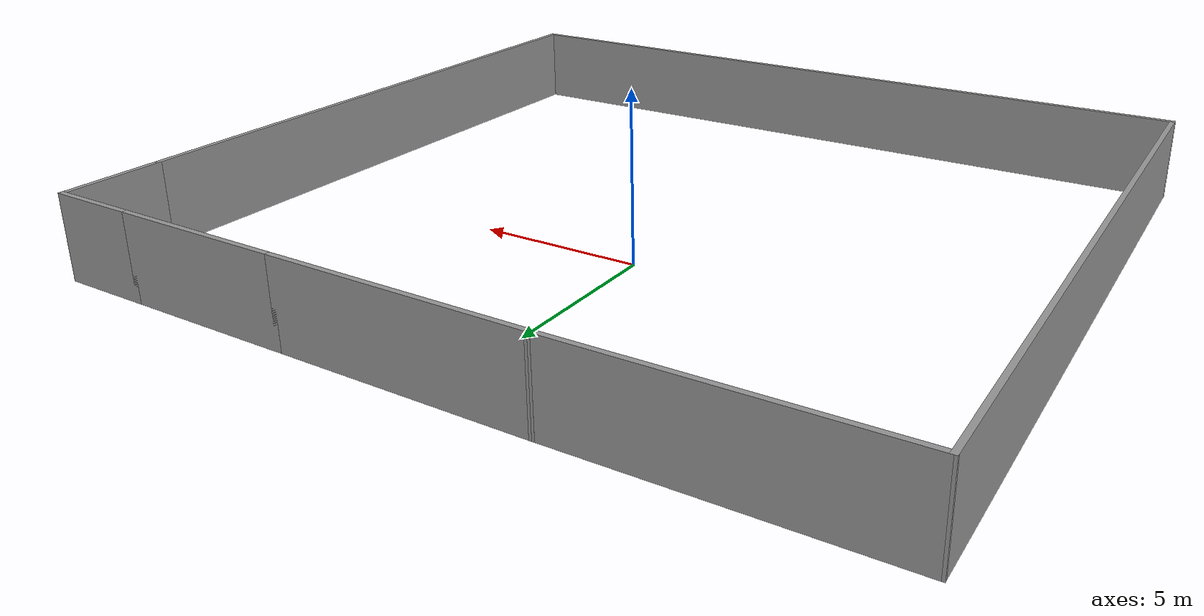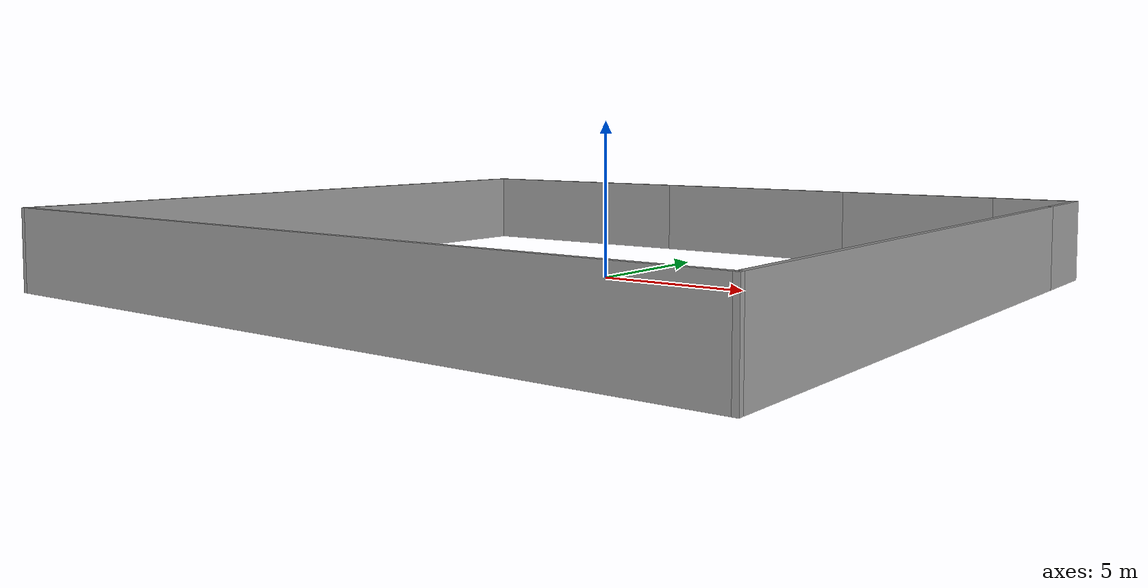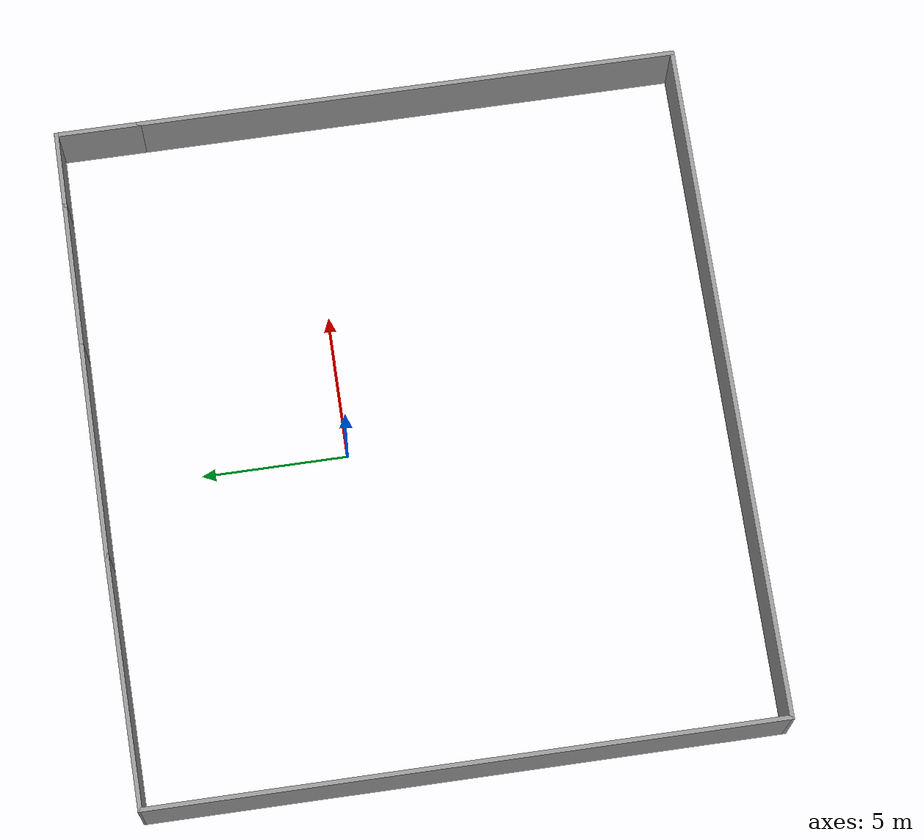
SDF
<?xml version='1.0'?>
<sdf version='1.7'>
  <model name='husky_empty.world'>
    <pose>0.319564 -2.31456 0 0 -0 0</pose>
    <link name='Wall_10'>
      <collision name='Wall_10_Collision'>
        <geometry>
          <box>
            <size>18.75 0.15 2.5</size>
          </box>
        </geometry>
        <pose>0 0 1.25 0 -0 0</pose>
      </collision>
      <visual name='Wall_10_Visual'>
        <pose>0 0 1.25 0 -0 0</pose>
        <geometry>
          <box>
            <size>18.75 0.15 2.5</size>
          </box>
        </geometry>
        <material>
          <script>
            <uri>file://media/materials/scripts/gazebo.material</uri>
            <name>Gazebo/Grey</name>
          </script>
          <ambient>1 1 1 1</ambient>
        </material>
        <meta>
          <layer>0</layer>
        </meta>
      </visual>
      <pose>11.8004 -1.42544 0 0 -0 -1.5708</pose>
    </link>
    <link name='Wall_11'>
      <collision name='Wall_11_Collision'>
        <geometry>
          <box>
            <size>23.75 0.15 2.5</size>
          </box>
        </geometry>
        <pose>0 0 1.25 0 -0 0</pose>
      </collision>
      <visual name='Wall_11_Visual'>
        <pose>0 0 1.25 0 -0 0</pose>
        <geometry>
          <box>
            <size>23.75 0.15 2.5</size>
          </box>
        </geometry>
        <material>
          <script>
            <uri>file://media/materials/scripts/gazebo.material</uri>
            <name>Gazebo/Grey</name>
          </script>
          <ambient>1 1 1 1</ambient>
        </material>
        <meta>
          <layer>0</layer>
        </meta>
      </visual>
      <pose>0.000436 -10.7254 0 0 -0 3.14159</pose>
    </link>
    <link name='Wall_12'>
      <collision name='Wall_12_Collision'>
        <geometry>
          <box>
            <size>21.5 0.15 2.5</size>
          </box>
        </geometry>
        <pose>0 0 1.25 0 -0 0</pose>
      </collision>
      <visual name='Wall_12_Visual'>
        <pose>0 0 1.25 0 -0 0</pose>
        <geometry>
          <box>
            <size>21.5 0.15 2.5</size>
          </box>
        </geometry>
        <material>
          <script>
            <uri>file://media/materials/scripts/gazebo.material</uri>
            <name>Gazebo/Grey</name>
          </script>
          <ambient>1 1 1 1</ambient>
        </material>
        <meta>
          <layer>0</layer>
        </meta>
      </visual>
      <pose>-11.7996 -0.050435 0 0 -0 1.5708</pose>
    </link>
    <link name='Wall_13'>
      <collision name='Wall_13_Collision'>
        <geometry>
          <box>
            <size>8.70059 0.15 2.5</size>
          </box>
        </geometry>
        <pose>0 0 1.25 0 -0 0</pose>
      </collision>
      <visual name='Wall_13_Visual'>
        <pose>0 0 1.25 0 -0 0</pose>
        <geometry>
          <box>
            <size>8.70059 0.15 2.5</size>
          </box>
        </geometry>
        <material>
          <script>
            <uri>file://media/materials/scripts/gazebo.material</uri>
            <name>Gazebo/Grey</name>
          </script>
          <ambient>1 1 1 1</ambient>
        </material>
        <meta>
          <layer>0</layer>
        </meta>
      </visual>
      <pose>-7.52456 10.6746 0 0 -0 0.011695</pose>
    </link>
    <link name='Wall_6'>
      <collision name='Wall_6_Collision'>
        <geometry>
          <box>
            <size>7.5 0.15 2.5</size>
          </box>
        </geometry>
        <pose>0 0 1.25 0 -0 0</pose>
      </collision>
      <visual name='Wall_6_Visual'>
        <pose>0 0 1.25 0 -0 0</pose>
        <geometry>
          <box>
            <size>7.5 0.15 2.5</size>
          </box>
        </geometry>
        <material>
          <script>
            <uri>file://media/materials/scripts/gazebo.material</uri>
            <name>Gazebo/Grey</name>
          </script>
          <ambient>1 1 1 1</ambient>
        </material>
        <meta>
          <layer>0</layer>
        </meta>
      </visual>
      <pose>0.425436 10.7246 0 0 -0 0</pose>
    </link>
    <link name='Wall_7'>
      <collision name='Wall_7_Collision'>
        <geometry>
          <box>
            <size>5.25 0.15 2.5</size>
          </box>
        </geometry>
        <pose>0 0 1.25 0 -0 0</pose>
      </collision>
      <visual name='Wall_7_Visual'>
        <pose>0 0 1.25 0 -0 0</pose>
        <geometry>
          <box>
            <size>5.25 0.15 2.5</size>
          </box>
        </geometry>
        <material>
          <script>
            <uri>file://media/materials/scripts/gazebo.material</uri>
            <name>Gazebo/Grey</name>
          </script>
          <ambient>1 1 1 1</ambient>
        </material>
        <meta>
          <layer>0</layer>
        </meta>
      </visual>
      <pose>6.65043 10.7246 0 0 -0 0</pose>
    </link>
    <link name='Wall_8'>
      <collision name='Wall_8_Collision'>
        <geometry>
          <box>
            <size>2.75 0.15 2.5</size>
          </box>
        </geometry>
        <pose>0 0 1.25 0 -0 0</pose>
      </collision>
      <visual name='Wall_8_Visual'>
        <pose>0 0 1.25 0 -0 0</pose>
        <geometry>
          <box>
            <size>2.75 0.15 2.5</size>
          </box>
        </geometry>
        <material>
          <script>
            <uri>file://media/materials/scripts/gazebo.material</uri>
            <name>Gazebo/Grey</name>
          </script>
          <ambient>1 1 1 1</ambient>
        </material>
        <meta>
          <layer>0</layer>
        </meta>
      </visual>
      <pose>10.5004 10.7246 0 0 -0 0</pose>
    </link>
    <link name='Wall_9'>
      <collision name='Wall_9_Collision'>
        <geometry>
          <box>
            <size>3 0.15 2.5</size>
          </box>
        </geometry>
        <pose>0 0 1.25 0 -0 0</pose>
      </collision>
      <visual name='Wall_9_Visual'>
        <pose>0 0 1.25 0 -0 0</pose>
        <geometry>
          <box>
            <size>3 0.15 2.5</size>
          </box>
        </geometry>
        <material>
          <script>
            <uri>file://media/materials/scripts/gazebo.material</uri>
            <name>Gazebo/Grey</name>
          </script>
          <ambient>1 1 1 1</ambient>
        </material>
        <meta>
          <layer>0</layer>
        </meta>
      </visual>
      <pose>11.8004 9.29956 0 0 -0 -1.5708</pose>
    </link>
    <static>1</static>
  </model>
</sdf>
